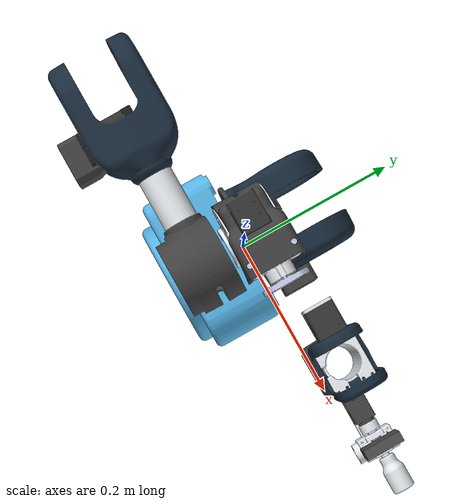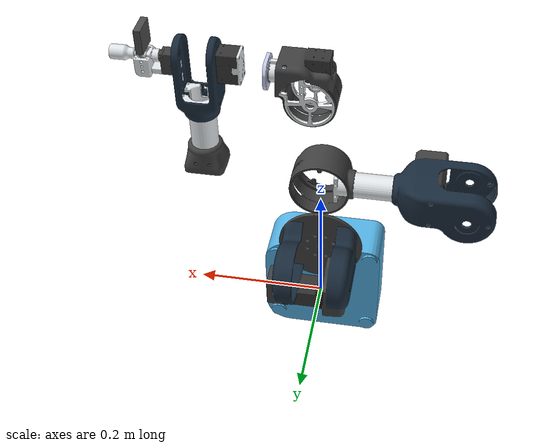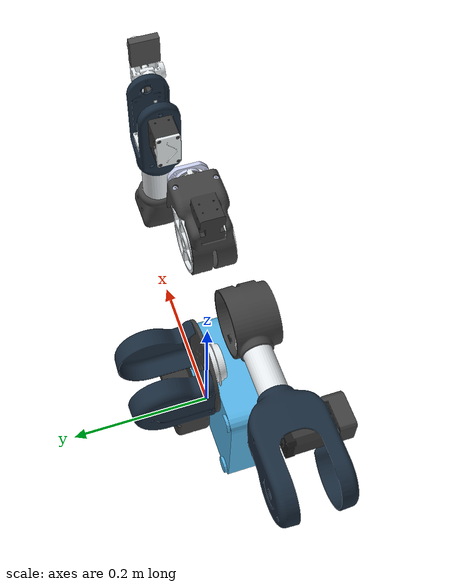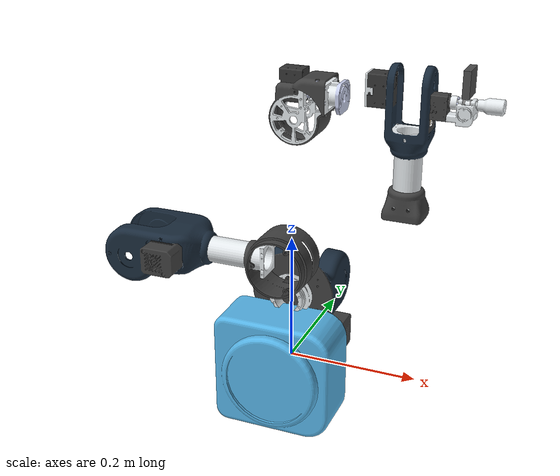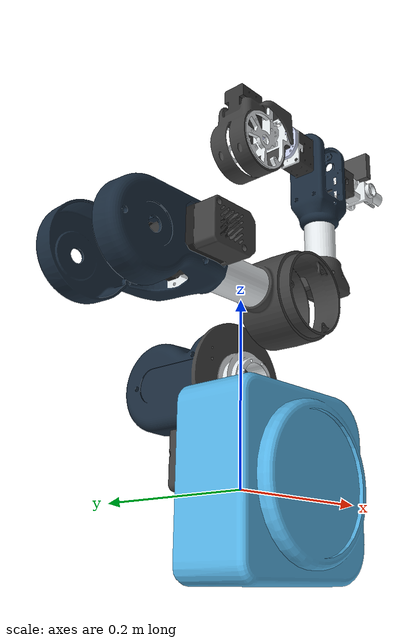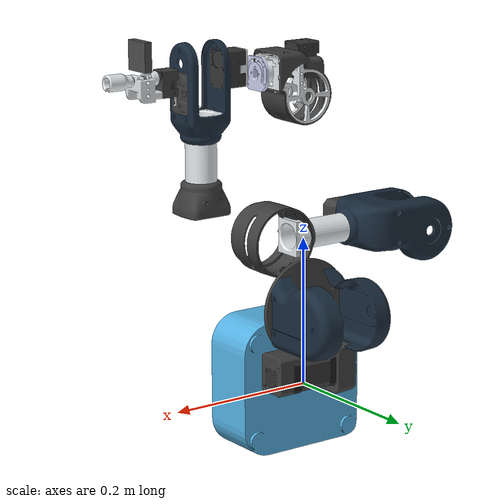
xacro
<?xml version="1.0"?>
<robot xmlns:xacro="http://www.ros.org/wiki/xacro" name="niryo_ned2">
    <!-- Including base robot -->
    <xacro:include filename="$(find niryo_robot_description)/urdf/ned2/niryo_gazebo.urdf.xacro"/>

    <!-- Properties -->
    <xacro:property name="cameraWidth" value="0.01"/>
    <xacro:property name="cameraHeight" value="0.037"/>
    <xacro:property name="cameraMass" value="0.05"/>

    <!-- Joint for camera -->
    <joint name="camera_joint" type="fixed">
        <axis xyz="0 0 1"/>
        <origin xyz="0 ${cameraHeight/2 + 0.02} 0" rpy="-${PI/2} 0 0"/>
        <parent link="wrist_link"/>
        <child link="camera_link"/>
    </joint>

    <!-- Camera link -->

    <link name="camera_link">
        <visual>
            <origin xyz="0 0 0" rpy="0 0 0"/>
            <geometry>
                <box size="${cameraWidth} ${cameraHeight} ${cameraHeight}"/>
            </geometry>
            <material name="DarkGrey"/>
        </visual>
    </link>

    <!-- Add gazebo settings to make the link an camera ! -->
    <gazebo reference="camera_link">
        <material>Gazebo/DarkGrey</material>
        <sensor type="camera" name="camera_gazebo">
            <update_rate>15.0</update_rate>
            <camera name="head">
                <!--69,33 degrees-->
                <horizontal_fov>1.21</horizontal_fov>
                <image>
                    <width>640</width>
                    <height>480</height>
                    <format>R8G8B8</format>
                </image>
                <clip>
                    <near>0.03</near>
                    <far>2</far>
                </clip>
                <distortion>
                    <k1>-0.4146402</k1>
                    <k2>0.2407384</k2>
                    <p1>-0.0</p1>
                    <p2>-0.0</p2>
                    <k3>-0.1040042</k3>
                    <center>0.5 0.5</center>
                </distortion>
            </camera>
            <plugin name="camera_controller" filename="libgazebo_ros_camera.so">
                <alwaysOn>true</alwaysOn>
                <updateRate>0.0</updateRate>
                <cameraName>gazebo_camera</cameraName>
                <imageTopicName>image_raw</imageTopicName>
                <cameraInfoTopicName>camera_info</cameraInfoTopicName>
                <frameName>camera_link</frameName>
            </plugin>
        </sensor>
    </gazebo>
</robot>

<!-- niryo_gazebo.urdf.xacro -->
<robot xmlns:xacro="http://www.ros.org/wiki/xacro" name="niryo_ned2">
    <!-- Enable Gazebo control-->
    <gazebo>
        <plugin name="gazebo_ros_control" filename="libgazebo_ros_control.so">
            <robotSimType>gazebo_ros_control/DefaultRobotHWSim</robotSimType>
        </plugin>
    </gazebo>

    <!-- Import Robot -->
    <xacro:include filename="$(find niryo_robot_description)/urdf/ned2/niryo.urdf.xacro"/>

    <!-- Import Transmission -->
    <xacro:include filename="$(find niryo_robot_description)/urdf/ned2/niryo.transmission.xacro"/>

</robot>

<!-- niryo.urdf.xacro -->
<robot xmlns:xacro="http://www.ros.org/wiki/xacro" name="niryo_ned2">
    <!-- Import Properties -->
    <xacro:include filename="$(find niryo_robot_description)/urdf/ned2/niryo_param.urdf.xacro"/>

    <!-- Links -->

    <link name="world"/>

    <joint name="joint_world" type="fixed">
        <parent link="world"/>
        <child link="base_link"/>
        <origin xyz="0 0 0" rpy="0 0 0"/>
    </joint>

    <link name="base_link">
        <inertial>
            <origin xyz="-0.00240796011216664 -0.00591764669105095 0.0515774030380053"
                    rpy="0 0 0"/>
            <mass value="0.999243361008122"/>
            <inertia ixx="0.002" ixy="0.0" ixz="0.0" iyy="0.002" iyz="0.0" izz="0.004"/>
        </inertial>
        <visual>
            <origin xyz="0 0 0"
                    rpy="0 0 0"/>
            <geometry>
                <mesh filename="package://niryo_robot_description/meshes/ned2/collada/base_link.dae"/>
            </geometry>
        </visual>
        <collision>
            <origin xyz="0 0 0"
                    rpy="0 0 0"/>
            <geometry>
                <mesh filename="package://niryo_robot_description/meshes/ned2/stl/base_link.stl"/>
            </geometry>
        </collision>
    </link>

    <joint name="joint_1"
           type="revolute">
        <origin xyz="0 0 0.1065"
                rpy="0 0 0"/>
        <parent link="base_link"/>
        <child link="shoulder_link"/>
        <axis xyz="0 0 1"/>
        <limit effort="10.0" velocity="2.2" lower="${(limit_low_shoulder_rotation + safety_pos_margin) * deg_to_rad}"
               upper="${(limit_up_shoulder_rotation - safety_pos_margin) * deg_to_rad}"/>
    </joint>

    <link name="shoulder_link">
        <inertial>
            <origin xyz="-0.0307310771918448 0.00581074732334248 0.0302277607274943"
                    rpy="0 0 0"/>
            <mass value="0.474558968160783"/>
            <inertia ixx="0.0015" ixy="0.0" ixz="0.0" iyy="0.0015" iyz="0.0" izz="0.0015"/>
        </inertial>
        <visual>
            <origin xyz="0 0 0"
                    rpy="0 0 0"/>
            <geometry>
                <mesh filename="package://niryo_robot_description/meshes/ned2/collada/shoulder_link.dae"/>
            </geometry>
        </visual>
        <collision>
            <origin xyz="0 0 0"
                    rpy="0 0 0"/>
            <geometry>
                <mesh filename="package://niryo_robot_description/meshes/ned2/stl/shoulder_link.stl"/>
            </geometry>
        </collision>
    </link>

    <joint name="joint_2"
           type="revolute">
        <origin xyz="0 0 0.065"
                rpy="${PI/2} ${-PI/2} 0"/>
        <parent link="shoulder_link"/>
        <child link="arm_link"/>
        <axis xyz="0 0 1"/>
        <limit effort="10.0" velocity="2.2" lower="${(limit_low_arm_rotation + safety_pos_margin) * deg_to_rad}"
               upper="${(limit_up_arm_rotation - safety_pos_margin) * deg_to_rad}"/>

    </joint>

    <link name="arm_link">
        <inertial>
            <origin xyz="0.116485160625991 -0.00141190194997476 -0.00338105503061108"
                    rpy="0 0 0"/>
            <mass value="0.513332159226246"/>
            <inertia ixx="0.0015" ixy="0.0" ixz="0.0" iyy="0.0015" iyz="0.0" izz="0.0015"/>
        </inertial>
        <visual>
            <origin xyz="0 0 0"
                    rpy="0 0 0"/>
            <geometry>
                <mesh filename="package://niryo_robot_description/meshes/ned2/collada/arm_link.dae"/>
            </geometry>
        </visual>
        <collision>
            <origin xyz="0 0 0"
                    rpy="0 0 0"/>
            <geometry>
                <mesh filename="package://niryo_robot_description/meshes/ned2/stl/arm_link.stl"/>
            </geometry>
        </collision>
    </link>

    <joint name="joint_3"
           type="revolute">
        <origin xyz="0.221 -0.012 0"
                rpy="0 0 ${-PI/2}"/>
        <parent link="arm_link"/>
        <child link="elbow_link"/>
        <axis xyz="0 0 1"/>
        <limit effort="7.0" velocity="2.0" lower="${(limit_low_elbow_rotation + safety_pos_margin) * deg_to_rad}"
               upper="${(limit_up_elbow_rotation - safety_pos_margin) * deg_to_rad}"/>

    </joint>

    <link name="elbow_link">
        <inertial>
            <origin xyz="0.00840548736069937 0.0235132719991579 0.00139784606943909"
                    rpy="0 0 0"/>
            <mass value="0.201038841892435"/>
            <inertia ixx="0.0015" ixy="0.0" ixz="0.0" iyy="0.0015" iyz="0.0" izz="0.0015"/>

        </inertial>
        <visual>
            <origin xyz="0 0 0"
                    rpy="0 0 0"/>
            <geometry>
                <mesh filename="package://niryo_robot_description/meshes/ned2/collada/elbow_link.dae"/>
            </geometry>
        </visual>
        <collision>
            <origin xyz="0 0 0"
                    rpy="0 0 0"/>
            <geometry>
                <mesh filename="package://niryo_robot_description/meshes/ned2/stl/elbow_link.stl"/>
            </geometry>
        </collision>
    </link>

    <joint name="joint_4"
           type="revolute">
        <origin xyz="0.047 0.0325 0"
                rpy="0 ${PI/2} 0"/>
        <parent link="elbow_link"/>
        <child link="forearm_link"/>
        <axis xyz="0 0 1"/>
        <limit effort="7.0" velocity="2.0" lower="${(limit_low_forearm_rotation + safety_pos_margin) * deg_to_rad}"
               upper="${(limit_up_forearm_rotation - safety_pos_margin) * deg_to_rad}"/>
    </joint>

    <link name="forearm_link">
        <inertial>
            <origin xyz="-0.00811345462189901 -0.000135618649565461 0.107402242790047"
                    rpy="0 0 0"/>
            <mass value="0.203543862275952"/>
            <inertia ixx="0.0015" ixy="0.0" ixz="0.0" iyy="0.0015" iyz="0.0" izz="0.0015"/>
        </inertial>
        <visual>
            <origin xyz="0 0 0"
                    rpy="0 0 0"/>
            <geometry>
                <mesh filename="package://niryo_robot_description/meshes/ned2/collada/forearm_link.dae"/>
            </geometry>
        </visual>
        <collision>
            <origin xyz="0 0 0"
                    rpy="0 0 0"/>
            <geometry>
                <mesh filename="package://niryo_robot_description/meshes/ned2/stl/forearm_link.stl"/>
            </geometry>
        </collision>
    </link>

    <!-- add collision for the motor of joint 5 -->
    <link name="joint5_motor">
        <inertial>
            <origin xyz="-0.00811345462189901 -0.000135618649565461 0.107402242790047"
                    rpy="0 0 0"/>
            <mass value="0.203543862275952"/>
            <inertia ixx="0.0015" ixy="0.0" ixz="0.0" iyy="0.0015" iyz="0.0" izz="0.0015"/>
        </inertial>
        <collision>
            <origin xyz="-0.045 0.0 0.1765"
                    rpy="0 0 0"/>
            <geometry>
                <box size="0.0435 0.0285 0.0465"/>
            </geometry>
        </collision>
    </link>

    <joint name="joint_test"
           type="fixed">
        <origin xyz="0 0 0"
                rpy="0 0 0"/>
        <parent link="forearm_link"/>
        <child link="joint5_motor"/>
    </joint>

    <joint name="joint_5"
           type="revolute">
        <origin xyz="0 0 0.188"
                rpy="${PI} ${-PI/2} ${PI}"/>
        <parent link="forearm_link"/>
        <child link="wrist_link"/>
        <axis xyz="0 0 1"/>
        <limit effort="6.0" velocity="2.0" lower="${(limit_low_wrist_rotation + safety_pos_margin) * deg_to_rad}"
               upper="${(limit_up_wrist_rotation - safety_pos_margin) * deg_to_rad}"/>

    </joint>

    <link name="wrist_link">
        <inertial>
            <origin xyz="-0.0193227036920796 -0.00157014407079775 0.000275751023741896"
                    rpy="0 0 0"/>
            <mass value="0.0403595377880338"/>
            <inertia ixx="0.0015" ixy="0.0" ixz="0.0" iyy="0.0015" iyz="0.0" izz="0.0015"/>
        </inertial>
        <visual>
            <origin xyz="0 0 0"
                    rpy="0 0 0"/>
            <geometry>
                <mesh filename="package://niryo_robot_description/meshes/ned2/collada/wrist_link.dae"/>
            </geometry>
        </visual>
        <collision>
            <origin xyz="0 0 0"
                    rpy="0 0 0"/>
            <geometry>
                <mesh filename="package://niryo_robot_description/meshes/ned2/stl/wrist_link.stl"/>
            </geometry>
        </collision>
    </link>

    <joint name="joint_6"
           type="revolute">
        <origin xyz="0.0197 0.00925 0"
                rpy="0 ${PI/2} 0"/>
        <parent link="wrist_link"/>
        <child link="hand_link"/>
        <axis xyz="0 0 1"/>
        <limit effort="5.0" velocity="2.0" lower="${(limit_low_hand_rotation + safety_pos_margin) * deg_to_rad}"
               upper="${(limit_up_hand_rotation - safety_pos_margin) * deg_to_rad}"/>
    </joint>

    <link name="hand_link">
        <inertial>
            <origin xyz="-5.84141230982198E-10 -1.35851692194544E-05 0.00881600136229516"
                    rpy="0 0 0"/>
            <mass value="0.0148769800713074"/>
            <inertia ixx="0.0015" ixy="0.0" ixz="0.0" iyy="0.0015" iyz="0.0" izz="0.0015"/>
        </inertial>
        <visual>
            <origin xyz="0 0 0"
                    rpy="0 0 0"/>
            <geometry>
                <mesh filename="package://niryo_robot_description/meshes/ned2/collada/hand_link.dae"/>
            </geometry>
        </visual>
        <collision>
            <origin xyz="0 0 0"
                    rpy="0 0 0"/>
            <geometry>
                <mesh filename="package://niryo_robot_description/meshes/ned2/stl/hand_link.stl"/>
            </geometry>
        </collision>
    </link>

    <joint name="hand_tool_joint" type="fixed">
        <parent link="hand_link"/>
        <child link="tool_link"/>
        <origin xyz="0 0 ${distance_hand_tool}" rpy="${-PI/2} ${-PI/2} 0"/>
    </joint>

    <link name="tool_link">
    </link>

</robot>

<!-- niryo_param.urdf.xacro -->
<robot xmlns:xacro="http://www.ros.org/wiki/xacro" name="niryo_ned2">
    <xacro:property name="PI" value="3.14159265359"/>
    <xacro:property name="deg_to_rad" value="${PI/180}"/>

    <!-- Properties -->

    <xacro:property name="distance_hand_tool" value="0.0215"/>

    <xacro:property name="limit_low_shoulder_rotation" value="-170.0"/>
    <xacro:property name="limit_up_shoulder_rotation" value="170.0"/>
    <xacro:property name="limit_low_arm_rotation" value="-120.0"/>
    <xacro:property name="limit_up_arm_rotation" value="35.0"/>
    <xacro:property name="limit_low_elbow_rotation" value="-77.0"/>
    <xacro:property name="limit_up_elbow_rotation" value="90.0"/>
    <xacro:property name="limit_low_forearm_rotation" value="-120.0"/>
    <xacro:property name="limit_up_forearm_rotation" value="120.0"/>
    <xacro:property name="limit_low_wrist_rotation" value="-100.0"/>
    <xacro:property name="limit_up_wrist_rotation" value="55.0"/>
    <xacro:property name="limit_low_hand_rotation" value="-145.0"/>
    <xacro:property name="limit_up_hand_rotation" value="145.0"/>

    <xacro:property name="safety_pos_margin" value="0.0"/>

</robot>
